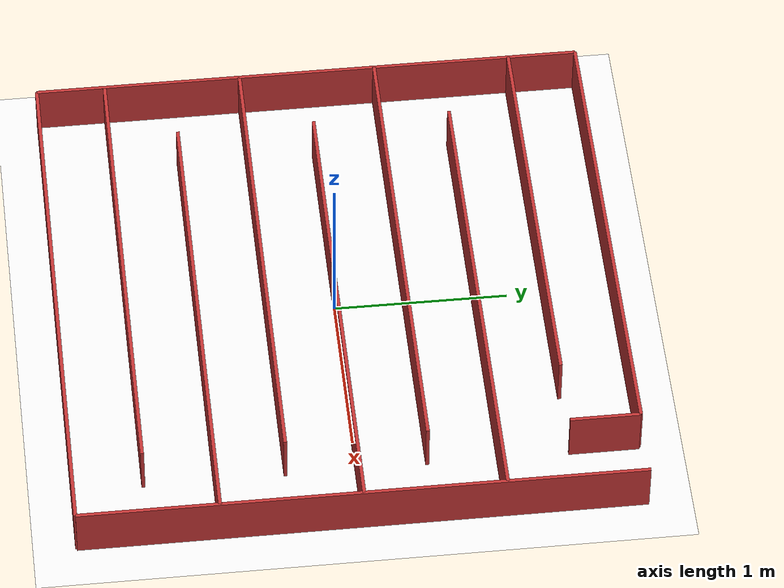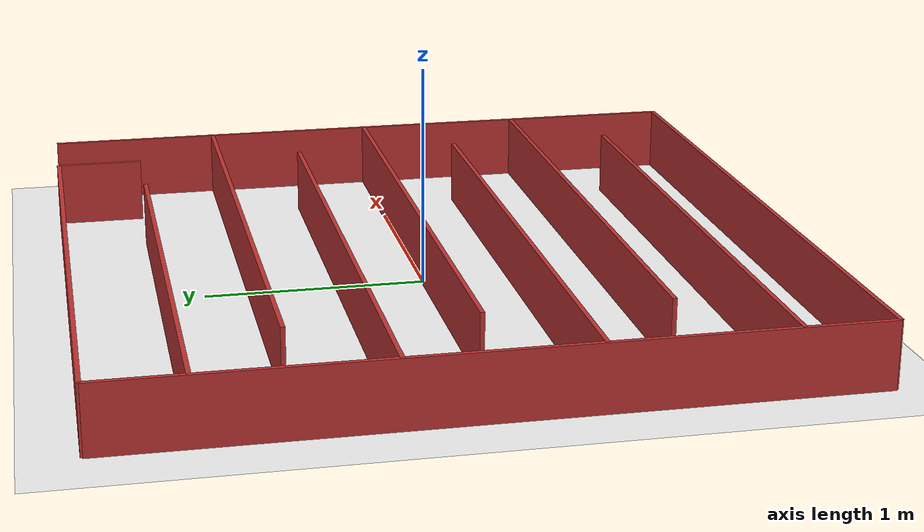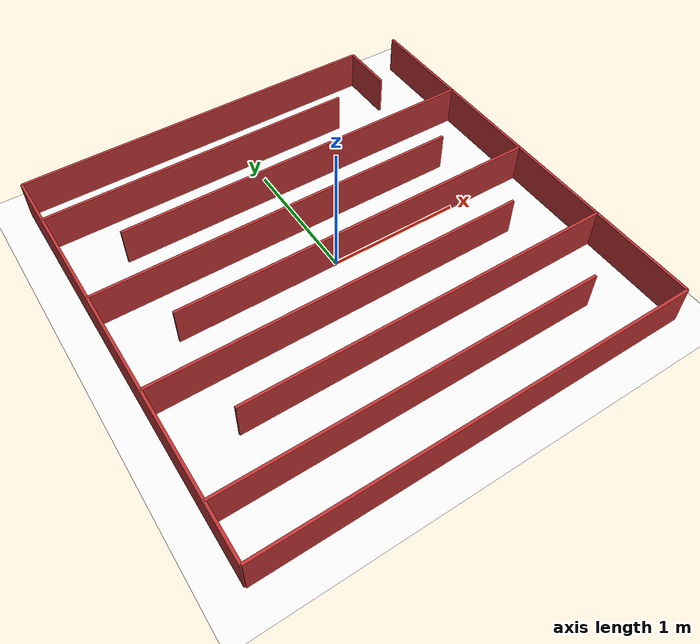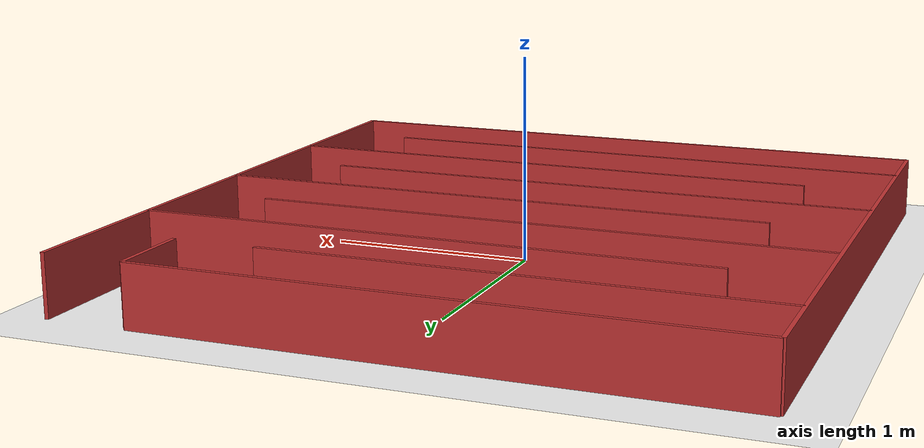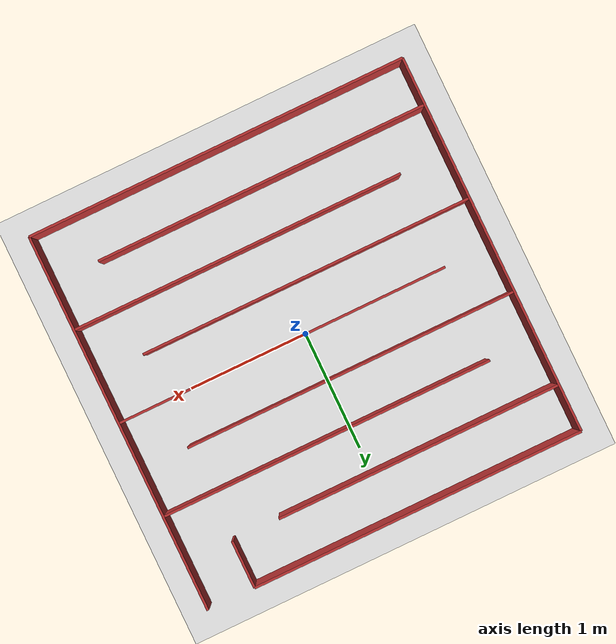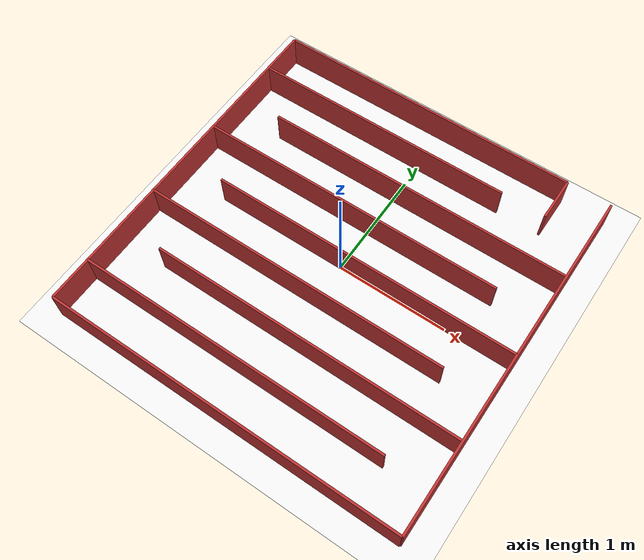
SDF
<?xml version="1.0"?>
<sdf version="1.10">
  <world name="maze">

    <physics name="default_physics" default="0" type="ode">
      <max_step_size>0.001</max_step_size>
      <real_time_factor>1.0</real_time_factor>
    </physics>

    <plugin filename="gz-sim-physics-system"           name="gz::sim::systems::Physics"/>
    <plugin filename="gz-sim-user-commands-system"     name="gz::sim::systems::UserCommands"/>
    <plugin filename="gz-sim-scene-broadcaster-system" name="gz::sim::systems::SceneBroadcaster"/>
    <plugin filename="gz-sim-sensors-system"           name="gz::sim::systems::Sensors">
      <render_engine>ogre2</render_engine>
    </plugin>
    <plugin filename="gz-sim-imu-system"               name="gz::sim::systems::Imu"/>

    <scene>
      <ambient>0.6 0.6 0.6 1</ambient>
      <background>0.9 0.9 0.95 1</background>
    </scene>

    <light type="directional" name="sun">
      <cast_shadows>true</cast_shadows>
      <pose>0 0 10 0 0 0</pose>
      <diffuse>0.9 0.9 0.9 1</diffuse>
      <specular>0.2 0.2 0.2 1</specular>
      <direction>-0.3 0.3 -1</direction>
    </light>

    <model name="ground_plane">
      <static>true</static>
      <link name="link">
        <collision name="collision">
          <geometry><plane><normal>0 0 1</normal><size>10 10</size></plane></geometry>
        </collision>
        <visual name="visual">
          <geometry><plane><normal>0 0 1</normal><size>10 10</size></plane></geometry>
          <material>
            <ambient>0.95 0.95 0.95 1</ambient>
            <diffuse>0.95 0.95 0.95 1</diffuse>
          </material>
        </visual>
      </link>
    </model>

    <!-- ===== outer boundary (3.2 × 3.2 m, north edge of cell (7,7) open) ===== -->
    <model name="boundary_south">
      <static>true</static>
      <pose>0 -1.6 0.15 0 0 0</pose>
      <link name="link">
        <collision name="c"><geometry><box><size>3.2 0.02 0.3</size></box></geometry></collision>
        <visual name="v"><geometry><box><size>3.2 0.02 0.3</size></box></geometry>
          <material><ambient>0.75 0.2 0.2 1</ambient><diffuse>0.75 0.2 0.2 1</diffuse></material></visual>
      </link>
    </model>
    <model name="boundary_north">
      <static>true</static>
      <!-- covers cells (0,7)..(6,7); cell (7,7) is the exit -->
      <pose>-0.2 1.6 0.15 0 0 0</pose>
      <link name="link">
        <collision name="c"><geometry><box><size>2.8 0.02 0.3</size></box></geometry></collision>
        <visual name="v"><geometry><box><size>2.8 0.02 0.3</size></box></geometry>
          <material><ambient>0.75 0.2 0.2 1</ambient><diffuse>0.75 0.2 0.2 1</diffuse></material></visual>
      </link>
    </model>
    <model name="boundary_west">
      <static>true</static>
      <pose>-1.6 0 0.15 0 0 0</pose>
      <link name="link">
        <collision name="c"><geometry><box><size>0.02 3.2 0.3</size></box></geometry></collision>
        <visual name="v"><geometry><box><size>0.02 3.2 0.3</size></box></geometry>
          <material><ambient>0.75 0.2 0.2 1</ambient><diffuse>0.75 0.2 0.2 1</diffuse></material></visual>
      </link>
    </model>
    <model name="boundary_east">
      <static>true</static>
      <pose>1.6 0 0.15 0 0 0</pose>
      <link name="link">
        <collision name="c"><geometry><box><size>0.02 3.2 0.3</size></box></geometry></collision>
        <visual name="v"><geometry><box><size>0.02 3.2 0.3</size></box></geometry>
          <material><ambient>0.75 0.2 0.2 1</ambient><diffuse>0.75 0.2 0.2 1</diffuse></material></visual>
      </link>
    </model>

    <!-- ===== interior horizontal walls (snake openings alternate east/west) ===== -->
    <!-- between row 0 and row 1, opening at col 7 -->
    <model name="hwall_r1">
      <static>true</static>
      <pose>-0.2 -1.2 0.15 0 0 0</pose>
      <link name="link">
        <collision name="c"><geometry><box><size>2.8 0.02 0.3</size></box></geometry></collision>
        <visual name="v"><geometry><box><size>2.8 0.02 0.3</size></box></geometry>
          <material><ambient>0.75 0.2 0.2 1</ambient><diffuse>0.75 0.2 0.2 1</diffuse></material></visual>
      </link>
    </model>
    <!-- between row 1 and row 2, opening at col 0 -->
    <model name="hwall_r2">
      <static>true</static>
      <pose>0.2 -0.8 0.15 0 0 0</pose>
      <link name="link">
        <collision name="c"><geometry><box><size>2.8 0.02 0.3</size></box></geometry></collision>
        <visual name="v"><geometry><box><size>2.8 0.02 0.3</size></box></geometry>
          <material><ambient>0.75 0.2 0.2 1</ambient><diffuse>0.75 0.2 0.2 1</diffuse></material></visual>
      </link>
    </model>
    <!-- between row 2 and row 3, opening at col 7 -->
    <model name="hwall_r3">
      <static>true</static>
      <pose>-0.2 -0.4 0.15 0 0 0</pose>
      <link name="link">
        <collision name="c"><geometry><box><size>2.8 0.02 0.3</size></box></geometry></collision>
        <visual name="v"><geometry><box><size>2.8 0.02 0.3</size></box></geometry>
          <material><ambient>0.75 0.2 0.2 1</ambient><diffuse>0.75 0.2 0.2 1</diffuse></material></visual>
      </link>
    </model>
    <!-- between row 3 and row 4, opening at col 0 -->
    <model name="hwall_r4">
      <static>true</static>
      <pose>0.2 0.0 0.15 0 0 0</pose>
      <link name="link">
        <collision name="c"><geometry><box><size>2.8 0.02 0.3</size></box></geometry></collision>
        <visual name="v"><geometry><box><size>2.8 0.02 0.3</size></box></geometry>
          <material><ambient>0.75 0.2 0.2 1</ambient><diffuse>0.75 0.2 0.2 1</diffuse></material></visual>
      </link>
    </model>
    <!-- between row 4 and row 5, opening at col 7 -->
    <model name="hwall_r5">
      <static>true</static>
      <pose>-0.2 0.4 0.15 0 0 0</pose>
      <link name="link">
        <collision name="c"><geometry><box><size>2.8 0.02 0.3</size></box></geometry></collision>
        <visual name="v"><geometry><box><size>2.8 0.02 0.3</size></box></geometry>
          <material><ambient>0.75 0.2 0.2 1</ambient><diffuse>0.75 0.2 0.2 1</diffuse></material></visual>
      </link>
    </model>
    <!-- between row 5 and row 6, opening at col 0 -->
    <model name="hwall_r6">
      <static>true</static>
      <pose>0.2 0.8 0.15 0 0 0</pose>
      <link name="link">
        <collision name="c"><geometry><box><size>2.8 0.02 0.3</size></box></geometry></collision>
        <visual name="v"><geometry><box><size>2.8 0.02 0.3</size></box></geometry>
          <material><ambient>0.75 0.2 0.2 1</ambient><diffuse>0.75 0.2 0.2 1</diffuse></material></visual>
      </link>
    </model>
    <!-- between row 6 and row 7, openings at col 6 (branch entry) and col 7 (main path) -->
    <model name="hwall_r7">
      <static>true</static>
      <pose>-0.4 1.2 0.15 0 0 0</pose>
      <link name="link">
        <collision name="c"><geometry><box><size>2.4 0.02 0.3</size></box></geometry></collision>
        <visual name="v"><geometry><box><size>2.4 0.02 0.3</size></box></geometry>
          <material><ambient>0.75 0.2 0.2 1</ambient><diffuse>0.75 0.2 0.2 1</diffuse></material></visual>
      </link>
    </model>

    <!-- ===== interior vertical walls ===== -->
    <!-- isolates cell (7,7) from (6,7) so the row-7 branch is a dead end -->
    <model name="vwall_r7_c7">
      <static>true</static>
      <pose>1.2 1.4 0.15 0 0 0</pose>
      <link name="link">
        <collision name="c"><geometry><box><size>0.02 0.4 0.3</size></box></geometry></collision>
        <visual name="v"><geometry><box><size>0.02 0.4 0.3</size></box></geometry>
          <material><ambient>0.75 0.2 0.2 1</ambient><diffuse>0.75 0.2 0.2 1</diffuse></material></visual>
      </link>
    </model>

  </world>
</sdf>
